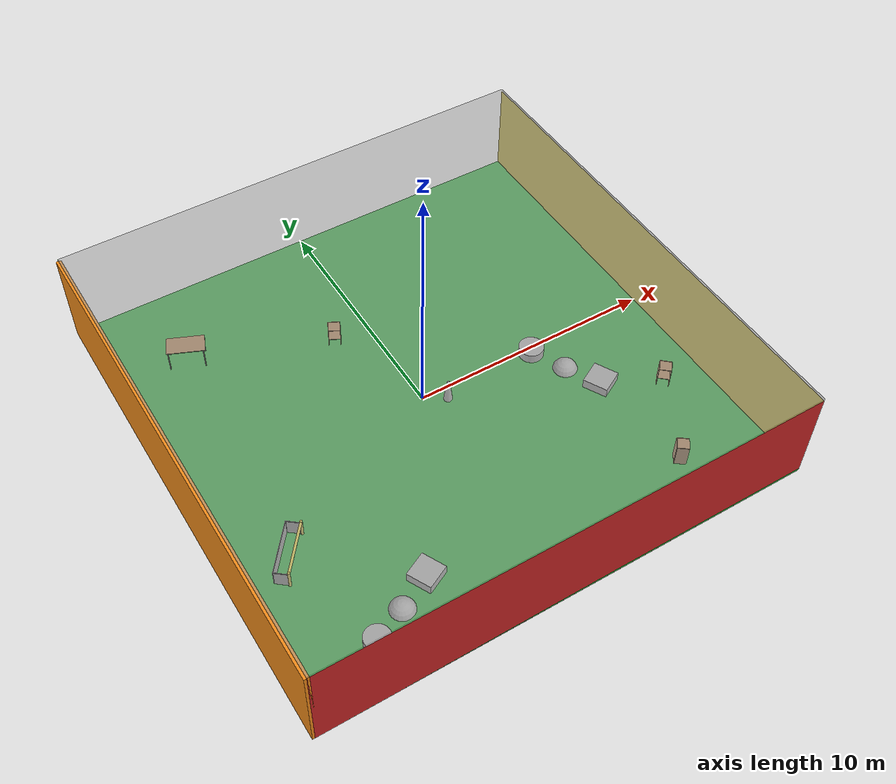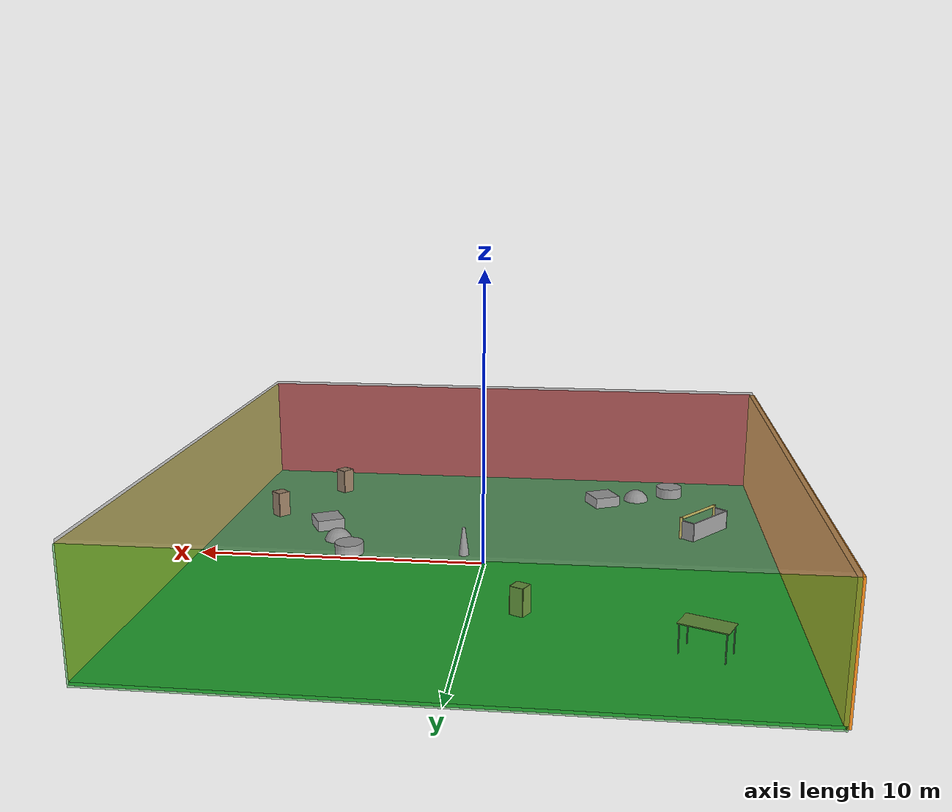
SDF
<sdf version="1.4">
 <world name="default">
  <physics type="ode">
   <max_step_size>0.001</max_step_size>
   <real_time_factor>1</real_time_factor>
   <real_time_update_rate>1000</real_time_update_rate>
   <gravity>0 0 -9.8</gravity>
  </physics>
  <scene><ambient>0.4 0.4 0.4 1</ambient><background>0.7 0.7 0.7 1</background><shadows>1</shadows></scene>
  <model name="Surrounding">
   <static>1</static>
   <link name="Ceiling">
    <collision name="Ceiling_Collision"><geometry><box><size>20 20 0.1</size></box></geometry></collision>
    <visual name="Ceiling_Visual">
     <geometry><box><size>20 20 0.1</size></box></geometry>
     <material>
      <script><uri>file://media/materials/scripts/gazebo.material</uri><name>Gazebo/GreyTransparent</name></script>
     </material>
    </visual>
    <pose>0 0 4.05 0 0 0</pose>
   </link>
   <link name="Wall_South">
    <collision name="Wall_South_Collision">
     <geometry><box><size>20 0 4</size></box></geometry>
     <pose>0 0 2 0 -0 0</pose>
    </collision>
    <visual name="Wall_South_Visual">
     <pose>0 0 2 0 -0 0</pose>
     <geometry><box><size>20 0 4</size></box></geometry>
     <material>
      <script><uri>file://media/materials/scripts/gazebo.material</uri><name>Gazebo/RedGlow</name></script>
     </material>
    </visual>
    <velocity_decay><linear>0</linear><angular>0</angular></velocity_decay>
    <pose>0 -10 0 0 -0 0</pose>
   </link>
   <link name="Wall_East">
    <collision name="Wall_21_Collision">
     <geometry><box><size>20 0 4</size></box></geometry>
     <pose>0 0 2 0 -0 0</pose>
    </collision>
    <visual name="Wall_21_Visual">
     <pose>0 0 2 0 -0 0</pose>
     <geometry><box><size>20 0 4</size></box></geometry>
     <material>
      <script><uri>file://media/materials/scripts/gazebo.material</uri><name>Gazebo/ZincYellow</name></script>
     </material>
    </visual>
    <velocity_decay><linear>0</linear><angular>0</angular></velocity_decay>
    <pose>10 0 0 0 -0 1.5708</pose>
   </link>
   <link name="Wall_North">
    <collision name="Wall_22_Collision">
     <geometry><box><size>20 0.2 4</size></box></geometry>
     <pose>0 0 2 0 -0 0</pose>
    </collision>
    <visual name="Wall_22_Visual">
     <pose>0 0 2 0 -0 0</pose>
     <geometry><box><size>20 0.2 4</size></box></geometry>
     <material>
      <script><uri>file://media/materials/scripts/gazebo.material</uri><name>Gazebo/GreenTransparent</name></script>
     </material>
    </visual>
    <velocity_decay><linear>0</linear><angular>0</angular></velocity_decay>
    <pose>0 10 0 0 -0 0</pose>
   </link>
   <link name="Wall_West">
    <collision name="Wall_23_Collision">
     <geometry><box><size>20 0.2 4</size></box></geometry>
     <pose>0 0 2 0 -0 0</pose>
    </collision>
    <visual name="Wall_23_Visual">
     <pose>0 0 2 0 -0 0</pose>
     <geometry><box><size>20 0.2 4</size></box></geometry>
     <material>
      <script><uri>file://media/materials/scripts/gazebo.material</uri><name>Gazebo/Orange</name></script>
     </material>
    </visual>
    <velocity_decay><linear>0</linear><angular>0</angular></velocity_decay>
    <pose>-10 0 0 0 0 -1.5708</pose>
   </link>
   <link name="Ground_link">
    <collision name="collision">
     <pose>0 0 .05 0 -0 0</pose>
     <geometry><box><size>20 20 0.1</size></box></geometry>
    </collision>
    <visual name="visual">
     <pose>0 0 .05 0 -0 0</pose>
     <geometry><box><size>20 20 0.1</size></box></geometry>
     <material>
      <script><uri>file://media/materials/scripts/gazebo.material</uri><name>Gazebo/GreenGlow</name></script>
     </material>
    </visual>
   </link>
   <static>1</static>
  </model>
  <spherical_coordinates>
   <surface_model>EARTH_WGS84</surface_model>
   <latitude_deg>0</latitude_deg>
   <longitude_deg>0</longitude_deg>
   <elevation>0</elevation>
   <heading_deg>0</heading_deg>
  </spherical_coordinates>
  <light name="lightball_0" type="diffuse">
   <diffuse>0.8 0.8 0.8 1</diffuse>
   <specular>0.2 0.2 0.2 1</specular>
   <attenuation>
    <range>100</range>
    <constant>0.7</constant>
    <linear>0.01</linear>
    <quadratic>0.001</quadratic>
   </attenuation>
   <direction>-0.5 0.1 -0.9</direction>
   <pose>5.20210917286 -1.17037000311 1.66646482359 0 0 0</pose>
  </light>
  <light name="lightball_1" type="diffuse">
   <diffuse>0.8 0.8 0.8 1</diffuse>
   <specular>0.2 0.2 0.2 1</specular>
   <attenuation>
    <range>100</range>
    <constant>0.7</constant>
    <linear>0.01</linear>
    <quadratic>0.001</quadratic>
   </attenuation>
   <direction>-0.5 0.1 -0.9</direction>
   <pose>8.54509365778 3.98721498014 2.94953818273 0 0 0</pose>
  </light>
  <light name="lightball_2" type="diffuse">
   <diffuse>0.8 0.8 0.8 1</diffuse>
   <specular>0.2 0.2 0.2 1</specular>
   <attenuation>
    <range>100</range>
    <constant>0.7</constant>
    <linear>0.01</linear>
    <quadratic>0.001</quadratic>
   </attenuation>
   <direction>-0.5 0.1 -0.9</direction>
   <pose>8.08136881227 0.458076481742 1.61632758862 0 0 0</pose>
  </light>
  <light name="lightball_3" type="diffuse">
   <diffuse>0.8 0.8 0.8 1</diffuse>
   <specular>0.2 0.2 0.2 1</specular>
   <attenuation>
    <range>100</range>
    <constant>0.7</constant>
    <linear>0.01</linear>
    <quadratic>0.001</quadratic>
   </attenuation>
   <direction>-0.5 0.1 -0.9</direction>
   <pose>-2.92286267592 -9.90624125616 2.68084447408 0 0 0</pose>
  </light>
  <light name="lightball_4" type="diffuse">
   <diffuse>0.8 0.8 0.8 1</diffuse>
   <specular>0.2 0.2 0.2 1</specular>
   <attenuation>
    <range>100</range>
    <constant>0.7</constant>
    <linear>0.01</linear>
    <quadratic>0.001</quadratic>
   </attenuation>
   <direction>-0.5 0.1 -0.9</direction>
   <pose>-2.50493509244 5.63283956208 3.39272104333 0 0 0</pose>
  </light>
  <light name="lightball_5" type="diffuse">
   <diffuse>0.8 0.8 0.8 1</diffuse>
   <specular>0.2 0.2 0.2 1</specular>
   <attenuation>
    <range>100</range>
    <constant>0.7</constant>
    <linear>0.01</linear>
    <quadratic>0.001</quadratic>
   </attenuation>
   <direction>-0.5 0.1 -0.9</direction>
   <pose>2.88040353864 6.6079441575 3.45625852079 0 0 0</pose>
  </light>
  <light name="lightball_6" type="diffuse">
   <diffuse>0.8 0.8 0.8 1</diffuse>
   <specular>0.2 0.2 0.2 1</specular>
   <attenuation>
    <range>100</range>
    <constant>0.7</constant>
    <linear>0.01</linear>
    <quadratic>0.001</quadratic>
   </attenuation>
   <direction>-0.5 0.1 -0.9</direction>
   <pose>1.28149546795 -7.49959267842 3.70908407702 0 0 0</pose>
  </light>
  <light name="lightball_7" type="diffuse">
   <diffuse>0.8 0.8 0.8 1</diffuse>
   <specular>0.2 0.2 0.2 1</specular>
   <attenuation>
    <range>100</range>
    <constant>0.7</constant>
    <linear>0.01</linear>
    <quadratic>0.001</quadratic>
   </attenuation>
   <direction>-0.5 0.1 -0.9</direction>
   <pose>4.05106023268 -8.42926336251 1.54675204556 0 0 0</pose>
  </light>
  <light name="lightball_8" type="diffuse">
   <diffuse>0.8 0.8 0.8 1</diffuse>
   <specular>0.2 0.2 0.2 1</specular>
   <attenuation>
    <range>100</range>
    <constant>0.7</constant>
    <linear>0.01</linear>
    <quadratic>0.001</quadratic>
   </attenuation>
   <direction>-0.5 0.1 -0.9</direction>
   <pose>-1.94199532521 -9.08101275748 2.23896724977 0 0 0</pose>
  </light>
  <light name="lightball_9" type="diffuse">
   <diffuse>0.8 0.8 0.8 1</diffuse>
   <specular>0.2 0.2 0.2 1</specular>
   <attenuation>
    <range>100</range>
    <constant>0.7</constant>
    <linear>0.01</linear>
    <quadratic>0.001</quadratic>
   </attenuation>
   <direction>-0.5 0.1 -0.9</direction>
   <pose>-4.31636259568 7.25999138245 2.59766873084 0 0 0</pose>
  </light>
  <include>
   <uri>model://robocup_3Dsim_goal</uri>
   <pose>-7.49921394942 -3.95141022383 0 0 0 2.46059578398</pose>
  </include>
  <include><uri>model://table</uri><pose>-6.90862032701 6.33187904563 0 0 0 2.7382041904</pose></include>
  <include>
   <uri>model://textured_shapes</uri>
   <pose>-5.35513747665 -7.5172270035 0 0 0 2.03182040264</pose>
  </include>
  <include><uri>model://cabinet</uri><pose>-1.54056727584 4.18528641211 0 0 0 1.10610707406</pose></include>
  <include>
   <uri>model://construction_cone</uri>
   <pose>0.7641851267 -0.578301298911 0 0 0 0.0981132845081</pose>
  </include>
  <include>
   <uri>model://textured_shapes</uri>
   <pose>5.47412060505 -1.63765142003 0 0 0 0.488115638582</pose>
  </include>
  <include><uri>model://cabinet</uri><pose>6.54549895917 -7.39632385026 0 0 0 2.48839310841</pose></include>
  <include><uri>model://cabinet</uri><pose>8.30582958613 -4.13817628772 0 0 0 0.839965009047</pose></include>
 </world>
</sdf>

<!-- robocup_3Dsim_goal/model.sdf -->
<sdf version="1.5">
  <model name="robocup_3d_goal">
    <static>true</static>
    <link name="left_post">
      <pose>0 1.05 0.45 0 0 0</pose>
      <collision name="collision">
        <geometry>
          <cylinder>
            <radius>0.05</radius>
            <length>0.9</length>
          </cylinder>
        </geometry>
      </collision>
      <visual name="visual">
        <geometry>
          <cylinder>
            <radius>0.05</radius>
            <length>0.9</length>
          </cylinder>
        </geometry>
        <material>
          <script>
            <uri>file://media/materials/scripts/gazebo.material</uri>
            <name>Gazebo/ZincYellow</name>
          </script>
        </material>
      </visual>
    </link>
    <link name="left_support_horiz_lower">
      <pose>0.30 1.05 0.01 0 0 0</pose>
      <collision name="collision">
        <geometry>
          <box>
            <size>0.50 0.02 0.02</size>
          </box>
        </geometry>
      </collision>
      <visual name="visual">
        <geometry>
          <box>
            <size>0.50 0.02 0.02</size>
          </box>
        </geometry>
        <material>
          <script>
            <uri>file://media/materials/scripts/gazebo.material</uri>
            <name>Gazebo/White</name>
          </script>
        </material>
      </visual>
    </link>
    <link name="left_support_horiz_upper">
      <pose>0.30 1.05 0.79 0 0 0</pose>
      <collision name="collision">
        <geometry>
          <box>
            <size>0.50 0.02 0.02</size>
          </box>
        </geometry>
      </collision>
      <visual name="visual">
        <geometry>
          <box>
            <size>0.50 0.02 0.02</size>
          </box>
        </geometry>
        <material>
          <script>
            <uri>file://media/materials/scripts/gazebo.material</uri>
            <name>Gazebo/White</name>
          </script>
        </material>
      </visual>
    </link>
    <link name="left_support_vertical">
      <pose>0.56 1.05 0.4 0 1.5708 0</pose>
      <collision name="collision">
        <geometry>
          <box>
            <size>0.80 0.02 0.02</size>
          </box>
        </geometry>
      </collision>
      <visual name="visual">
        <geometry>
          <box>
            <size>0.80 0.02 0.02</size>
          </box>
        </geometry>
        <material>
          <script>
            <uri>file://media/materials/scripts/gazebo.material</uri>
            <name>Gazebo/White</name>
          </script>
        </material>
      </visual>
    </link>
    <link name="right_support_horiz_lower">
      <pose>0.30 -1.05 0.01 0 0 0</pose>
      <collision name="collision">
        <geometry>
          <box>
            <size>0.50 0.02 0.02</size>
          </box>
        </geometry>
      </collision>
      <visual name="visual">
        <geometry>
          <box>
            <size>0.50 0.02 0.02</size>
          </box>
        </geometry>
        <material>
          <script>
            <uri>file://media/materials/scripts/gazebo.material</uri>
            <name>Gazebo/White</name>
          </script>
        </material>
      </visual>
    </link>
    <link name="right_support_horiz_upper">
      <pose>0.30 -1.05 0.79 0 0 0</pose>
      <collision name="collision">
        <geometry>
          <box>
            <size>0.50 0.02 0.02</size>
          </box>
        </geometry>
      </collision>
      <visual name="visual">
        <geometry>
          <box>
            <size>0.50 0.02 0.02</size>
          </box>
        </geometry>
        <material>
          <script>
            <uri>file://media/materials/scripts/gazebo.material</uri>
            <name>Gazebo/White</name>
          </script>
        </material>
      </visual>
    </link>
    <link name="right_support_vertical">
      <pose>0.56 -1.05 0.4 0 1.5708 0</pose>
      <collision name="collision">
        <geometry>
          <box>
            <size>0.80 0.02 0.02</size>
          </box>
        </geometry>
      </collision>
      <visual name="visual">
        <geometry>
          <box>
            <size>0.80 0.02 0.02</size>
          </box>
        </geometry>
        <material>
          <script>
            <uri>file://media/materials/scripts/gazebo.material</uri>
            <name>Gazebo/White</name>
          </script>
        </material>
      </visual>
    </link>
    <link name="center_support_horiz_lower">
      <pose>0.56 0 0.01 0 1.5708 0</pose>
      <collision name="collision">
        <geometry>
          <box>
            <size>0.02 2.08 0.02</size>
          </box>
        </geometry>
      </collision>
      <visual name="visual">
        <geometry>
          <box>
            <size>0.02 2.08 0.02</size>
          </box>
        </geometry>
        <material>
          <script>
            <uri>file://media/materials/scripts/gazebo.material</uri>
            <name>Gazebo/White</name>
          </script>
        </material>
      </visual>
    </link>
    <link name="center_support_horiz_upper">
      <pose>0.56 0 0.79 0 1.5708 0</pose>
      <collision name="collision">
        <geometry>
          <box>
            <size>0.02 2.08 0.02</size>
          </box>
        </geometry>
      </collision>
      <visual name="visual">
        <geometry>
          <box>
            <size>0.02 2.08 0.02</size>
          </box>
        </geometry>
        <material>
          <script>
            <uri>file://media/materials/scripts/gazebo.material</uri>
            <name>Gazebo/White</name>
          </script>
        </material>
      </visual>
    </link>
    <link name="right_post">
      <pose>0 -1.05 0.45 0 0 0</pose>
      <collision name="collision">
        <geometry>
          <cylinder>
            <radius>0.05</radius>
            <length>0.9</length>
          </cylinder>
        </geometry>
      </collision>
      <visual name="visual">
        <geometry>
          <cylinder>
            <radius>0.05</radius>
            <length>0.9</length>
          </cylinder>
        </geometry>
        <material>
          <script>
            <uri>file://media/materials/scripts/gazebo.material</uri>
            <name>Gazebo/ZincYellow</name>
          </script>
        </material>
      </visual>
    </link>
    <link name="crossbar">
      <pose>0 0 0.85 1.57 1.57 0</pose>
      <collision name="collision">
        <geometry>
          <cylinder>
            <radius>0.05</radius>
            <length>2.0</length>
          </cylinder>
        </geometry>
      </collision>
      <visual name="visual">
        <geometry>
          <cylinder>
            <radius>0.05</radius>
            <length>2.0</length>
          </cylinder>
        </geometry>
        <material>
          <script>
            <uri>file://media/materials/scripts/gazebo.material</uri>
            <name>Gazebo/ZincYellow</name>
          </script>
        </material>
      </visual>
    </link>
    <link name="center_net">
      <pose>0.56 0 0.40 0 0 0</pose>
      <collision name="collision">
        <geometry>
          <box>
            <size>0.01 2.1 0.80</size>
          </box>
        </geometry>
      </collision>
      <visual name="visual">
        <geometry>
          <box>
            <size>0.01 2.1 0.80</size>
          </box>
        </geometry>
        <material>
          <script>
            <uri>model://../model_source/models/robocup09_spl_field/materials/scripts/</uri>
            <uri>model://../model_source/models/robocup09_spl_field/materials/textures/</uri>
            <name>RoboCup/Net</name>
          </script>
        </material>
      </visual>
    </link>
    <link name="left_net">
      <pose>0.30 1.05 0.40 0 0 0</pose>
      <collision name="collision">
        <geometry>
          <box>
            <size>0.50 0.01 0.76</size>
          </box>
        </geometry>
      </collision>
      <visual name="visual">
        <geometry>
          <box>
            <size>0.50 0.01 0.76</size>
          </box>
        </geometry>
        <material>
          <script>
            <uri>model://../model_source/models/robocup09_spl_field/materials/scripts/</uri>
            <uri>model://../model_source/models/robocup09_spl_field/materials/textures/</uri>
            <name>RoboCup/Net</name>
          </script>
        </material>
      </visual>
    </link>
    <link name="right_net">
      <pose>0.30 -1.05 0.40 0 0 0</pose>
      <collision name="collision">
        <geometry>
          <box>
            <size>0.50 0.01 0.76</size>
          </box>
        </geometry>
      </collision>
      <visual name="visual">
        <geometry>
          <box>
            <size>0.50 0.01 0.76</size>
          </box>
        </geometry>
        <material>
          <script>
            <uri>model://../model_source/models/robocup09_spl_field/materials/scripts/</uri>
            <uri>model://../model_source/models/robocup09_spl_field/materials/textures/</uri>
            <name>RoboCup/Net</name>
          </script>
        </material>
      </visual>
    </link>
  </model>
</sdf>

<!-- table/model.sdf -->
<sdf version="1.5">
  <model name="table">
    <static>true</static>
    <link name="link">
      <collision name="surface">
        <pose>0 0 1.0 0 0 0</pose>
        <geometry>
          <box>
            <size>1.5 0.8 0.03</size>
          </box>
        </geometry>
        <surface>
          <friction>
            <ode>
              <mu>0.6</mu>
              <mu2>0.6</mu2>
            </ode>
          </friction>
        </surface>
      </collision>
      <visual name="visual1">
        <pose>0 0 1.0 0 0 0</pose>
        <geometry>
          <box>
            <size>1.5 0.8 0.03</size>
          </box>
        </geometry>
        <material>
          <script>
            <uri>model://media/materials/scripts/gazebo.material</uri>
            <name>Gazebo/Wood</name>
          </script>
        </material>
      </visual>
      <collision name="front_left_leg">
        <pose>0.68 0.38 0.5 0 0 0</pose>
        <geometry>
          <cylinder>
            <radius>0.02</radius>
            <length>1.0</length>
          </cylinder>
        </geometry>
      </collision>
      <visual name="front_left_leg">
        <pose>0.68 0.38 0.5 0 0 0</pose>
        <geometry>
          <cylinder>
            <radius>0.02</radius>
            <length>1.0</length>
          </cylinder>
        </geometry>
        <material>
          <script>
            <uri>model://media/materials/scripts/gazebo.material</uri>
            <name>Gazebo/Grey</name>
          </script>
        </material>
      </visual>
      <collision name="front_right_leg">
        <pose>0.68 -0.38 0.5 0 0 0</pose>
        <geometry>
          <cylinder>
            <radius>0.02</radius>
            <length>1.0</length>
          </cylinder>
        </geometry>
      </collision>
      <visual name="front_right_leg">
        <pose>0.68 -0.38 0.5 0 0 0</pose>
        <geometry>
          <cylinder>
            <radius>0.02</radius>
            <length>1.0</length>
          </cylinder>
        </geometry>
        <material>
          <script>
            <uri>model://media/materials/scripts/gazebo.material</uri>
            <name>Gazebo/Grey</name>
          </script>
        </material>
      </visual>
      <collision name="back_right_leg">
        <pose>-0.68 -0.38 0.5 0 0 0</pose>
        <geometry>
          <cylinder>
            <radius>0.02</radius>
            <length>1.0</length>
          </cylinder>
        </geometry>
      </collision>
      <visual name="back_right_leg">
        <pose>-0.68 -0.38 0.5 0 0 0</pose>
        <geometry>
          <cylinder>
            <radius>0.02</radius>
            <length>1.0</length>
          </cylinder>
        </geometry>
        <material>
          <script>
            <uri>model://media/materials/scripts/gazebo.material</uri>
            <name>Gazebo/Grey</name>
          </script>
        </material>
      </visual>
      <collision name="back_left_leg">
        <pose>-0.68 0.38 0.5 0 0 0</pose>
        <geometry>
          <cylinder>
            <radius>0.02</radius>
            <length>1.0</length>
          </cylinder>
        </geometry>
      </collision>
      <visual name="back_left_leg">
        <pose>-0.68 0.38 0.5 0 0 0</pose>
        <geometry>
          <cylinder>
            <radius>0.02</radius>
            <length>1.0</length>
          </cylinder>
        </geometry>
        <material>
          <script>
            <uri>model://media/materials/scripts/gazebo.material</uri>
            <name>Gazebo/Grey</name>
          </script>
        </material>
      </visual>
    </link>
  </model>
</sdf>

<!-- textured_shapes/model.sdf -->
<sdf version="1.6">
  <model name="textured_shapes">
    <pose>0 0 0.5 0 0 0</pose>
    <link name="box">
      <pose>0 -1.5 0 0 0 0</pose>
      <collision name="collision">
        <geometry>
          <box>
            <size>1 1 1</size>
          </box>
        </geometry>
      </collision>
      <visual name="visual">
        <geometry>
          <box>
            <size>1 1 1</size>
          </box>
        </geometry>
        <material>
          <script>
            <uri>model://../model_source/models/textured_shapes/materials/scripts</uri>
            <uri>model://../model_source/models/textured_shapes/materials/textures</uri>
            <name>TexturedShape/Squares</name>
          </script>
        </material>
      </visual>
    </link>
    <link name="sphere">
      <collision name="collision">
        <geometry>
          <sphere>
            <radius>0.5</radius>
          </sphere>
        </geometry>
      </collision>
      <visual name="visual">
        <geometry>
          <sphere>
            <radius>0.5</radius>
          </sphere>
        </geometry>
        <material>
          <script>
            <uri>model://../model_source/models/textured_shapes/materials/scripts</uri>
            <uri>model://../model_source/models/textured_shapes/materials/textures</uri>
            <name>TexturedShape/Squares</name>
          </script>
        </material>
      </visual>
    </link>
    <link name="cylinder">
      <pose>0 1.5 0 0 0 0</pose>
      <collision name="collision">
        <geometry>
          <cylinder>
            <radius>0.5</radius>
            <length>1</length>
          </cylinder>
        </geometry>
      </collision>
      <visual name="visual">
        <geometry>
          <cylinder>
            <radius>0.5</radius>
            <length>1</length>
          </cylinder>
        </geometry>
        <material>
          <script>
            <uri>model://../model_source/models/textured_shapes/materials/scripts</uri>
            <uri>model://../model_source/models/textured_shapes/materials/textures</uri>
            <name>TexturedShape/Squares</name>
          </script>
        </material>
      </visual>
    </link>
  </model>
</sdf>

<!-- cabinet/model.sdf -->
<sdf version="1.5">
  <model name="cabinet">
    <static>true</static>
    <link name="cabinet_bottom_plate">
      <inertial>
        <pose>0 0 -1 0 0 0</pose>
        <inertia>
          <ixx>2.050000</ixx>
          <ixy>0</ixy>
          <ixz>0</ixz>
          <iyy>2.050000</iyy>
          <iyz>0</iyz>
          <izz>2.050000</izz>
        </inertia>
        <mass>25.000000</mass>
      </inertial>
      <collision name="cabinet_bottom_plate_geom">
        <pose>0 0 0.010000 0 0 0</pose>
        <geometry>
          <box>
            <size>0.450000 0.450000 0.020000</size>
          </box>
        </geometry>
      </collision>
      <visual name="cabinet_bottom_plate_geom_visual">
        <pose>0 0 0.010000 0 0 0</pose>
        <geometry>
          <box>
            <size>0.450000 0.450000 0.020000</size>
          </box>
        </geometry>
        <material>
          <script>
            <uri>model://media/materials/scripts/gazebo.material</uri>
            <name>Gazebo/Wood</name>
          </script>
        </material>
      </visual>
      <collision name="cabinet_bottom_plate_geom_cabinet_back_plate">
        <pose>0.235000 0 0.510000 0 0 0</pose>
        <geometry>
          <box>
            <size>0.020000 0.450000 1.020000</size>
          </box>
        </geometry>
      </collision>
      <visual name="cabinet_bottom_plate_geom_cabinet_back_plate_visual">
        <pose>0.235000 0 0.510000 0 0 0</pose>
        <geometry>
          <box>
            <size>0.020000 0.450000 1.020000</size>
          </box>
        </geometry>
        <material>
          <script>
            <uri>model://media/materials/scripts/gazebo.material</uri>
            <name>Gazebo/Wood</name>
          </script>
        </material>
      </visual>
      <collision name="cabinet_bottom_plate_geom_cabinet_left_plate">
        <pose>0 0.235000 0.510000 0 0 0</pose>
        <geometry>
          <box>
            <size>0.450000 0.020000 1.020000</size>
          </box>
        </geometry>
      </collision>
      <visual name="cabinet_bottom_plate_geom_cabinet_left_plate_visual">
        <pose>0 0.235000 0.510000 0 0 0</pose>
        <geometry>
          <box>
            <size>0.450000 0.020000 1.020000</size>
          </box>
        </geometry>
        <material>
          <script>
            <uri>model://media/materials/scripts/gazebo.material</uri>
            <name>Gazebo/Wood</name>
          </script>
        </material>
      </visual>
      <collision name="cabinet_bottom_plate_geom_cabinet_middle_plate">
        <pose>0 0 0.510000 0 0 0</pose>
        <geometry>
          <box>
            <size>0.450000 0.450000 0.020000</size>
          </box>
        </geometry>
      </collision>
      <visual name="cabinet_bottom_plate_geom_cabinet_middle_plate_visual">
        <pose>0 0 0.510000 0 0 0</pose>
        <geometry>
          <box>
            <size>0.450000 0.450000 0.020000</size>
          </box>
        </geometry>
        <material>
          <script>
            <uri>model://media/materials/scripts/gazebo.material</uri>
            <name>Gazebo/Wood</name>
          </script>
        </material>
      </visual>
      <collision name="cabinet_bottom_plate_geom_cabinet_right_plate">
        <pose>0 -0.235000 0.510000 0 0 0</pose>
        <geometry>
          <box>
            <size>0.450000 0.020000 1.020000</size>
          </box>
        </geometry>
      </collision>
      <visual name="cabinet_bottom_plate_geom_cabinet_right_plate_visual">
        <pose>0 -0.235000 0.510000 0 0 0</pose>
        <geometry>
          <box>
            <size>0.450000 0.020000 1.020000</size>
          </box>
        </geometry>
        <material>
          <script>
            <uri>model://media/materials/scripts/gazebo.material</uri>
            <name>Gazebo/Wood</name>
          </script>
        </material>
      </visual>
      <collision name="cabinet_bottom_plate_geom_cabinet_top_plate">
        <pose>0 0 1.010000 0 0 0</pose>
        <geometry>
          <box>
            <size>0.450000 0.450000 0.020000</size>
          </box>
        </geometry>
      </collision>
      <visual name="cabinet_bottom_plate_geom_cabinet_top_plate_visual">
        <pose>0 0 1.010000 0 0 0</pose>
        <geometry>
          <box>
            <size>0.450000 0.450000 0.020000</size>
          </box>
        </geometry>
        <material>
          <script>
            <uri>model://media/materials/scripts/gazebo.material</uri>
            <name>Gazebo/Wood</name>
          </script>
        </material>
      </visual>
    </link>
  </model>
</sdf>

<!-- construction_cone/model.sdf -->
<sdf version="1.5">
  <model name="Construction Cone">
    <link name="link">
      <collision name="collision">
        <geometry>
          <mesh>
            <scale>10 10 10</scale>
            <uri>file://isr-testbed/construction_cone/meshes/construction_cone.dae</uri>
          </mesh>
        </geometry>
      </collision>
      <visual name="visual">
        <geometry>
          <mesh>
            <scale>10 10 10</scale>
            <uri>file://isr-testbed/construction_cone/meshes/construction_cone.dae</uri>
          </mesh>
        </geometry>
      </visual>
    </link>
  </model>
</sdf>
